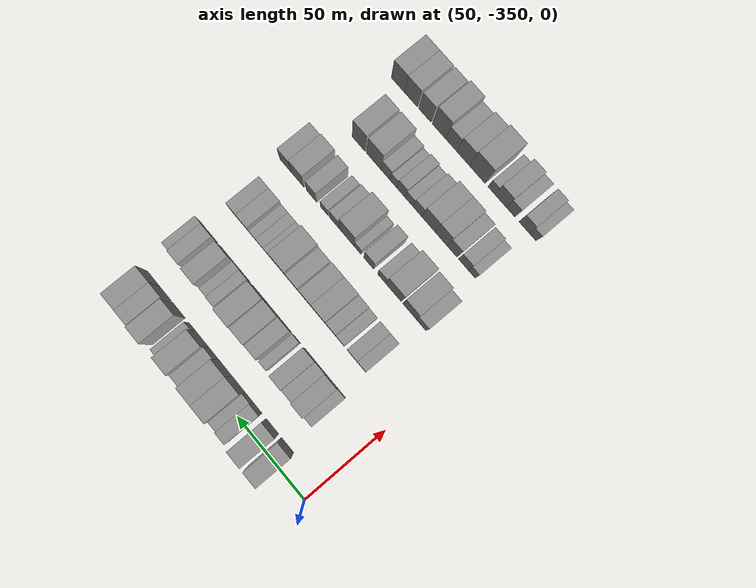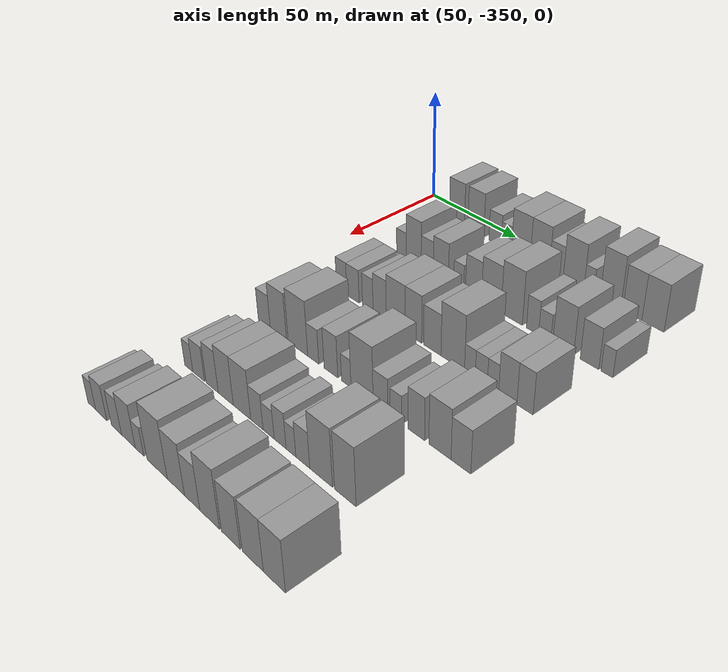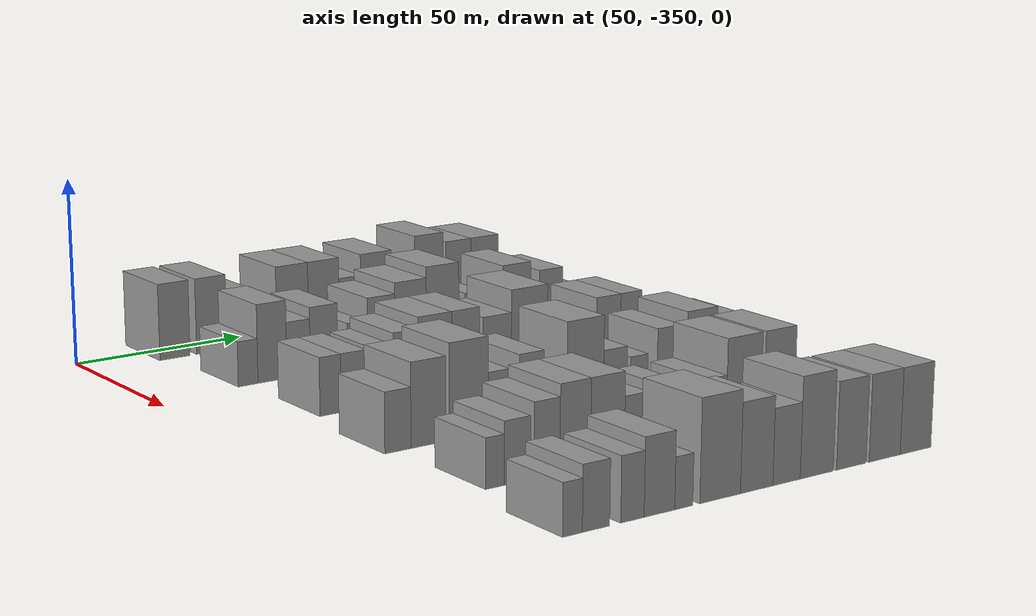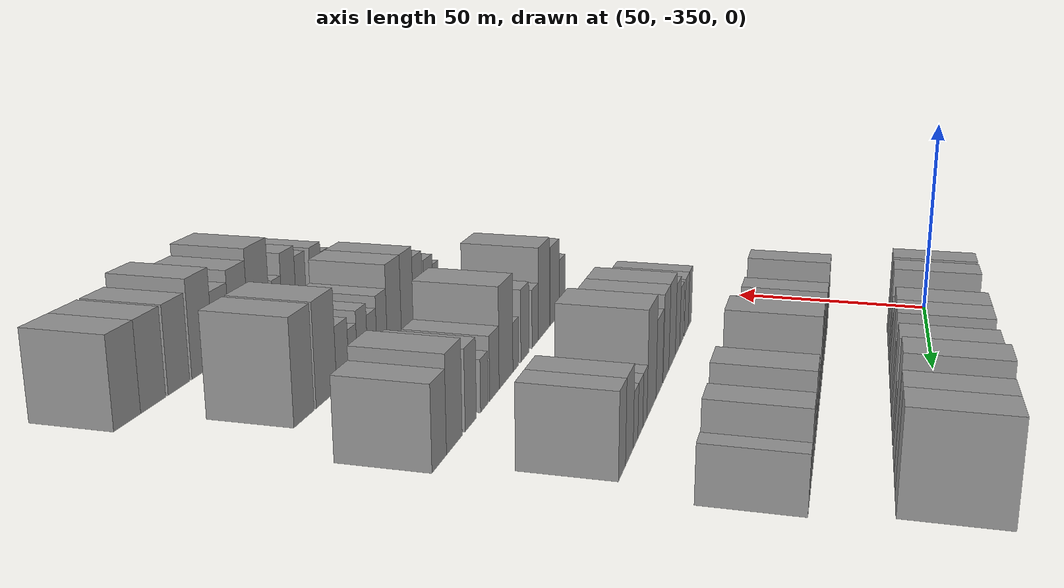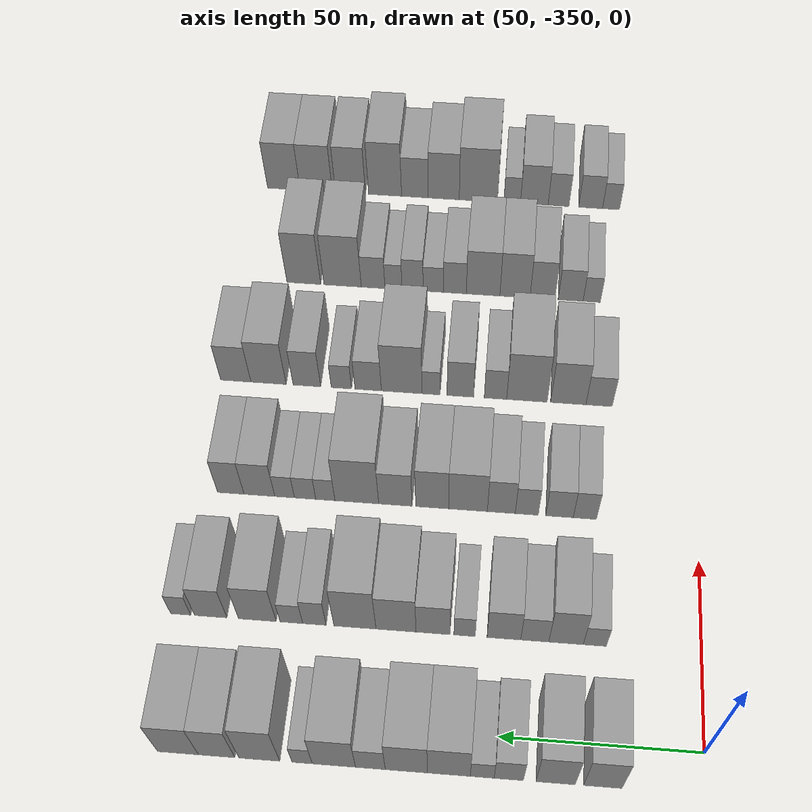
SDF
<sdf version="1.6">
 <world name="default">
  <model name="building_18">
   <static>1</static>
   <pose>50.0000 -325.6242 0 0.000000 0.000000 0.000000</pose>
   <link name="link">
    <pose>0 0 10.50 0 0 0</pose>
    <collision name="collision"><geometry><box><size>20.0000 9.1735 21.0000</size></box></geometry></collision>
    <visual name="visual">
     <cast_shadows>0</cast_shadows>
     <geometry><box><size>20.0000 9.1735 21.0000</size></box></geometry>
     <material>
      <script>
       <uri>model://grey_wall/materials/scripts</uri>
       <uri>model://grey_wall/materials/textures</uri>
       <name>vrc/grey_wall</name>
      </script>
     </material>
    </visual>
   </link>
  </model>
  <model name="building_19">
   <static>1</static>
   <pose>50.0000 -314.3347 0 0.000000 0.000000 0.000000</pose>
   <link name="link">
    <pose>0 0 10.50 0 0 0</pose>
    <collision name="collision"><geometry><box><size>20.0000 9.4055 21.0000</size></box></geometry></collision>
    <visual name="visual">
     <cast_shadows>0</cast_shadows>
     <geometry><box><size>20.0000 9.4055 21.0000</size></box></geometry>
     <material>
      <script>
       <uri>model://grey_wall/materials/scripts</uri>
       <uri>model://grey_wall/materials/textures</uri>
       <name>vrc/grey_wall</name>
      </script>
     </material>
    </visual>
   </link>
  </model>
  <model name="building_20">
   <static>1</static>
   <pose>50.0000 -303.0996 0 0.000000 0.000000 0.000000</pose>
   <link name="link">
    <pose>0 0 7.50 0 0 0</pose>
    <collision name="collision"><geometry><box><size>20.0000 7.0647 15.0000</size></box></geometry></collision>
    <visual name="visual">
     <cast_shadows>0</cast_shadows>
     <geometry><box><size>20.0000 7.0647 15.0000</size></box></geometry>
     <material>
      <script>
       <uri>model://grey_wall/materials/scripts</uri>
       <uri>model://grey_wall/materials/textures</uri>
       <name>vrc/grey_wall</name>
      </script>
     </material>
    </visual>
   </link>
  </model>
  <model name="building_21">
   <static>1</static>
   <pose>50.0000 -296.7143 0 0.000000 0.000000 0.000000</pose>
   <link name="link">
    <pose>0 0 6.00 0 0 0</pose>
    <collision name="collision"><geometry><box><size>20.0000 5.7060 12.0000</size></box></geometry></collision>
    <visual name="visual">
     <cast_shadows>0</cast_shadows>
     <geometry><box><size>20.0000 5.7060 12.0000</size></box></geometry>
     <material>
      <script>
       <uri>model://grey_wall/materials/scripts</uri>
       <uri>model://grey_wall/materials/textures</uri>
       <name>vrc/grey_wall</name>
      </script>
     </material>
    </visual>
   </link>
  </model>
  <model name="building_22">
   <static>1</static>
   <pose>50.0000 -288.7204 0 0.000000 0.000000 0.000000</pose>
   <link name="link">
    <pose>0 0 10.50 0 0 0</pose>
    <collision name="collision"><geometry><box><size>20.0000 10.2817 21.0000</size></box></geometry></collision>
    <visual name="visual">
     <cast_shadows>0</cast_shadows>
     <geometry><box><size>20.0000 10.2817 21.0000</size></box></geometry>
     <material>
      <script>
       <uri>model://grey_wall/materials/scripts</uri>
       <uri>model://grey_wall/materials/textures</uri>
       <name>vrc/grey_wall</name>
      </script>
     </material>
    </visual>
   </link>
  </model>
  <model name="building_23">
   <static>1</static>
   <pose>50.0000 -278.4777 0 0.000000 0.000000 0.000000</pose>
   <link name="link">
    <pose>0 0 10.50 0 0 0</pose>
    <collision name="collision"><geometry><box><size>20.0000 10.2036 21.0000</size></box></geometry></collision>
    <visual name="visual">
     <cast_shadows>0</cast_shadows>
     <geometry><box><size>20.0000 10.2036 21.0000</size></box></geometry>
     <material>
      <script>
       <uri>model://grey_wall/materials/scripts</uri>
       <uri>model://grey_wall/materials/textures</uri>
       <name>vrc/grey_wall</name>
      </script>
     </material>
    </visual>
   </link>
  </model>
  <model name="building_24">
   <static>1</static>
   <pose>50.0000 -269.7830 0 0.000000 0.000000 0.000000</pose>
   <link name="link">
    <pose>0 0 7.50 0 0 0</pose>
    <collision name="collision"><geometry><box><size>20.0000 7.1858 15.0000</size></box></geometry></collision>
    <visual name="visual">
     <cast_shadows>0</cast_shadows>
     <geometry><box><size>20.0000 7.1858 15.0000</size></box></geometry>
     <material>
      <script>
       <uri>model://grey_wall/materials/scripts</uri>
       <uri>model://grey_wall/materials/textures</uri>
       <name>vrc/grey_wall</name>
      </script>
     </material>
    </visual>
   </link>
  </model>
  <model name="building_25">
   <static>1</static>
   <pose>50.0000 -260.9441 0 0.000000 0.000000 0.000000</pose>
   <link name="link">
    <pose>0 0 10.50 0 0 0</pose>
    <collision name="collision"><geometry><box><size>20.0000 10.4920 21.0000</size></box></geometry></collision>
    <visual name="visual">
     <cast_shadows>0</cast_shadows>
     <geometry><box><size>20.0000 10.4920 21.0000</size></box></geometry>
     <material>
      <script>
       <uri>model://grey_wall/materials/scripts</uri>
       <uri>model://grey_wall/materials/textures</uri>
       <name>vrc/grey_wall</name>
      </script>
     </material>
    </visual>
   </link>
  </model>
  <model name="building_26">
   <static>1</static>
   <pose>50.0000 -253.2410 0 0.000000 0.000000 0.000000</pose>
   <link name="link">
    <pose>0 0 6.00 0 0 0</pose>
    <collision name="collision"><geometry><box><size>20.0000 4.9143 12.0000</size></box></geometry></collision>
    <visual name="visual">
     <cast_shadows>0</cast_shadows>
     <geometry><box><size>20.0000 4.9143 12.0000</size></box></geometry>
     <material>
      <script>
       <uri>model://grey_wall/materials/scripts</uri>
       <uri>model://grey_wall/materials/textures</uri>
       <name>vrc/grey_wall</name>
      </script>
     </material>
    </visual>
   </link>
  </model>
  <model name="building_27">
   <static>1</static>
   <pose>50.0000 -242.8196 0 0.000000 0.000000 0.000000</pose>
   <link name="link">
    <pose>0 0 12.00 0 0 0</pose>
    <collision name="collision"><geometry><box><size>20.0000 9.9284 24.0000</size></box></geometry></collision>
    <visual name="visual">
     <cast_shadows>0</cast_shadows>
     <geometry><box><size>20.0000 9.9284 24.0000</size></box></geometry>
     <material>
      <script>
       <uri>model://grey_wall/materials/scripts</uri>
       <uri>model://grey_wall/materials/textures</uri>
       <name>vrc/grey_wall</name>
      </script>
     </material>
    </visual>
   </link>
  </model>
  <model name="building_28">
   <static>1</static>
   <pose>50.0000 -232.4057 0 0.000000 0.000000 0.000000</pose>
   <link name="link">
    <pose>0 0 10.50 0 0 0</pose>
    <collision name="collision"><geometry><box><size>20.0000 8.8994 21.0000</size></box></geometry></collision>
    <visual name="visual">
     <cast_shadows>0</cast_shadows>
     <geometry><box><size>20.0000 8.8994 21.0000</size></box></geometry>
     <material>
      <script>
       <uri>model://grey_wall/materials/scripts</uri>
       <uri>model://grey_wall/materials/textures</uri>
       <name>vrc/grey_wall</name>
      </script>
     </material>
    </visual>
   </link>
  </model>
  <model name="building_29">
   <static>1</static>
   <pose>50.0000 -222.9685 0 0.000000 0.000000 0.000000</pose>
   <link name="link">
    <pose>0 0 10.50 0 0 0</pose>
    <collision name="collision"><geometry><box><size>20.0000 9.9748 21.0000</size></box></geometry></collision>
    <visual name="visual">
     <cast_shadows>0</cast_shadows>
     <geometry><box><size>20.0000 9.9748 21.0000</size></box></geometry>
     <material>
      <script>
       <uri>model://grey_wall/materials/scripts</uri>
       <uri>model://grey_wall/materials/textures</uri>
       <name>vrc/grey_wall</name>
      </script>
     </material>
    </visual>
   </link>
  </model>
  <model name="building_141">
   <static>1</static>
   <pose>85.0000 -323.1185 0 0.000000 0.000000 0.000000</pose>
   <link name="link">
    <pose>0 0 6.00 0 0 0</pose>
    <collision name="collision"><geometry><box><size>20.0000 5.8265 12.0000</size></box></geometry></collision>
    <visual name="visual">
     <cast_shadows>0</cast_shadows>
     <geometry><box><size>20.0000 5.8265 12.0000</size></box></geometry>
     <material>
      <script>
       <uri>model://grey_wall/materials/scripts</uri>
       <uri>model://grey_wall/materials/textures</uri>
       <name>vrc/grey_wall</name>
      </script>
     </material>
    </visual>
   </link>
  </model>
  <model name="building_142">
   <static>1</static>
   <pose>85.0000 -315.8381 0 0.000000 0.000000 0.000000</pose>
   <link name="link">
    <pose>0 0 10.50 0 0 0</pose>
    <collision name="collision"><geometry><box><size>20.0000 8.7344 21.0000</size></box></geometry></collision>
    <visual name="visual">
     <cast_shadows>0</cast_shadows>
     <geometry><box><size>20.0000 8.7344 21.0000</size></box></geometry>
     <material>
      <script>
       <uri>model://grey_wall/materials/scripts</uri>
       <uri>model://grey_wall/materials/textures</uri>
       <name>vrc/grey_wall</name>
      </script>
     </material>
    </visual>
   </link>
  </model>
  <model name="building_143">
   <static>1</static>
   <pose>85.0000 -307.9108 0 0.000000 0.000000 0.000000</pose>
   <link name="link">
    <pose>0 0 7.50 0 0 0</pose>
    <collision name="collision"><geometry><box><size>20.0000 7.1203 15.0000</size></box></geometry></collision>
    <visual name="visual">
     <cast_shadows>0</cast_shadows>
     <geometry><box><size>20.0000 7.1203 15.0000</size></box></geometry>
     <material>
      <script>
       <uri>model://grey_wall/materials/scripts</uri>
       <uri>model://grey_wall/materials/textures</uri>
       <name>vrc/grey_wall</name>
      </script>
     </material>
    </visual>
   </link>
  </model>
  <model name="building_144">
   <static>1</static>
   <pose>85.0000 -300.0840 0 0.000000 0.000000 0.000000</pose>
   <link name="link">
    <pose>0 0 9.00 0 0 0</pose>
    <collision name="collision"><geometry><box><size>20.0000 8.5332 18.0000</size></box></geometry></collision>
    <visual name="visual">
     <cast_shadows>0</cast_shadows>
     <geometry><box><size>20.0000 8.5332 18.0000</size></box></geometry>
     <material>
      <script>
       <uri>model://grey_wall/materials/scripts</uri>
       <uri>model://grey_wall/materials/textures</uri>
       <name>vrc/grey_wall</name>
      </script>
     </material>
    </visual>
   </link>
  </model>
  <model name="building_145">
   <static>1</static>
   <pose>85.0000 -290.1033 0 0.000000 0.000000 0.000000</pose>
   <link name="link">
    <pose>0 0 6.00 0 0 0</pose>
    <collision name="collision"><geometry><box><size>20.0000 5.4283 12.0000</size></box></geometry></collision>
    <visual name="visual">
     <cast_shadows>0</cast_shadows>
     <geometry><box><size>20.0000 5.4283 12.0000</size></box></geometry>
     <material>
      <script>
       <uri>model://grey_wall/materials/scripts</uri>
       <uri>model://grey_wall/materials/textures</uri>
       <name>vrc/grey_wall</name>
      </script>
     </material>
    </visual>
   </link>
  </model>
  <model name="building_146">
   <static>1</static>
   <pose>85.0000 -282.0687 0 0.000000 0.000000 0.000000</pose>
   <link name="link">
    <pose>0 0 9.00 0 0 0</pose>
    <collision name="collision"><geometry><box><size>20.0000 8.6408 18.0000</size></box></geometry></collision>
    <visual name="visual">
     <cast_shadows>0</cast_shadows>
     <geometry><box><size>20.0000 8.6408 18.0000</size></box></geometry>
     <material>
      <script>
       <uri>model://grey_wall/materials/scripts</uri>
       <uri>model://grey_wall/materials/textures</uri>
       <name>vrc/grey_wall</name>
      </script>
     </material>
    </visual>
   </link>
  </model>
  <model name="building_147">
   <static>1</static>
   <pose>85.0000 -272.6235 0 0.000000 0.000000 0.000000</pose>
   <link name="link">
    <pose>0 0 10.50 0 0 0</pose>
    <collision name="collision"><geometry><box><size>20.0000 10.2497 21.0000</size></box></geometry></collision>
    <visual name="visual">
     <cast_shadows>0</cast_shadows>
     <geometry><box><size>20.0000 10.2497 21.0000</size></box></geometry>
     <material>
      <script>
       <uri>model://grey_wall/materials/scripts</uri>
       <uri>model://grey_wall/materials/textures</uri>
       <name>vrc/grey_wall</name>
      </script>
     </material>
    </visual>
   </link>
  </model>
  <model name="building_148">
   <static>1</static>
   <pose>85.0000 -262.1212 0 0.000000 0.000000 0.000000</pose>
   <link name="link">
    <pose>0 0 12.00 0 0 0</pose>
    <collision name="collision"><geometry><box><size>20.0000 10.7550 24.0000</size></box></geometry></collision>
    <visual name="visual">
     <cast_shadows>0</cast_shadows>
     <geometry><box><size>20.0000 10.7550 24.0000</size></box></geometry>
     <material>
      <script>
       <uri>model://grey_wall/materials/scripts</uri>
       <uri>model://grey_wall/materials/textures</uri>
       <name>vrc/grey_wall</name>
      </script>
     </material>
    </visual>
   </link>
  </model>
  <model name="building_149">
   <static>1</static>
   <pose>85.0000 -251.7388 0 0.000000 0.000000 0.000000</pose>
   <link name="link">
    <pose>0 0 7.50 0 0 0</pose>
    <collision name="collision"><geometry><box><size>20.0000 6.0099 15.0000</size></box></geometry></collision>
    <visual name="visual">
     <cast_shadows>0</cast_shadows>
     <geometry><box><size>20.0000 6.0099 15.0000</size></box></geometry>
     <material>
      <script>
       <uri>model://grey_wall/materials/scripts</uri>
       <uri>model://grey_wall/materials/textures</uri>
       <name>vrc/grey_wall</name>
      </script>
     </material>
    </visual>
   </link>
  </model>
  <model name="building_150">
   <static>1</static>
   <pose>85.0000 -245.8248 0 0.000000 0.000000 0.000000</pose>
   <link name="link">
    <pose>0 0 6.00 0 0 0</pose>
    <collision name="collision"><geometry><box><size>20.0000 5.8181 12.0000</size></box></geometry></collision>
    <visual name="visual">
     <cast_shadows>0</cast_shadows>
     <geometry><box><size>20.0000 5.8181 12.0000</size></box></geometry>
     <material>
      <script>
       <uri>model://grey_wall/materials/scripts</uri>
       <uri>model://grey_wall/materials/textures</uri>
       <name>vrc/grey_wall</name>
      </script>
     </material>
    </visual>
   </link>
  </model>
  <model name="building_151">
   <static>1</static>
   <pose>85.0000 -237.0635 0 0.000000 0.000000 0.000000</pose>
   <link name="link">
    <pose>0 0 10.50 0 0 0</pose>
    <collision name="collision"><geometry><box><size>20.0000 9.7045 21.0000</size></box></geometry></collision>
    <visual name="visual">
     <cast_shadows>0</cast_shadows>
     <geometry><box><size>20.0000 9.7045 21.0000</size></box></geometry>
     <material>
      <script>
       <uri>model://grey_wall/materials/scripts</uri>
       <uri>model://grey_wall/materials/textures</uri>
       <name>vrc/grey_wall</name>
      </script>
     </material>
    </visual>
   </link>
  </model>
  <model name="building_152">
   <static>1</static>
   <pose>85.0000 -225.0335 0 0.000000 0.000000 0.000000</pose>
   <link name="link">
    <pose>0 0 9.00 0 0 0</pose>
    <collision name="collision"><geometry><box><size>20.0000 8.3554 18.0000</size></box></geometry></collision>
    <visual name="visual">
     <cast_shadows>0</cast_shadows>
     <geometry><box><size>20.0000 8.3554 18.0000</size></box></geometry>
     <material>
      <script>
       <uri>model://grey_wall/materials/scripts</uri>
       <uri>model://grey_wall/materials/textures</uri>
       <name>vrc/grey_wall</name>
      </script>
     </material>
    </visual>
   </link>
  </model>
  <model name="building_153">
   <static>1</static>
   <pose>85.0000 -217.2545 0 0.000000 0.000000 0.000000</pose>
   <link name="link">
    <pose>0 0 6.00 0 0 0</pose>
    <collision name="collision"><geometry><box><size>20.0000 5.2027 12.0000</size></box></geometry></collision>
    <visual name="visual">
     <cast_shadows>0</cast_shadows>
     <geometry><box><size>20.0000 5.2027 12.0000</size></box></geometry>
     <material>
      <script>
       <uri>model://grey_wall/materials/scripts</uri>
       <uri>model://grey_wall/materials/textures</uri>
       <name>vrc/grey_wall</name>
      </script>
     </material>
    </visual>
   </link>
  </model>
  <model name="building_270">
   <static>1</static>
   <pose>120.0000 -319.8528 0 0.000000 0.000000 0.000000</pose>
   <link name="link">
    <pose>0 0 7.50 0 0 0</pose>
    <collision name="collision"><geometry><box><size>20.0000 6.1813 15.0000</size></box></geometry></collision>
    <visual name="visual">
     <cast_shadows>0</cast_shadows>
     <geometry><box><size>20.0000 6.1813 15.0000</size></box></geometry>
     <material>
      <script>
       <uri>model://grey_wall/materials/scripts</uri>
       <uri>model://grey_wall/materials/textures</uri>
       <name>vrc/grey_wall</name>
      </script>
     </material>
    </visual>
   </link>
  </model>
  <model name="building_271">
   <static>1</static>
   <pose>120.0000 -313.0981 0 0.000000 0.000000 0.000000</pose>
   <link name="link">
    <pose>0 0 7.50 0 0 0</pose>
    <collision name="collision"><geometry><box><size>20.0000 7.3280 15.0000</size></box></geometry></collision>
    <visual name="visual">
     <cast_shadows>0</cast_shadows>
     <geometry><box><size>20.0000 7.3280 15.0000</size></box></geometry>
     <material>
      <script>
       <uri>model://grey_wall/materials/scripts</uri>
       <uri>model://grey_wall/materials/textures</uri>
       <name>vrc/grey_wall</name>
      </script>
     </material>
    </visual>
   </link>
  </model>
  <model name="building_272">
   <static>1</static>
   <pose>120.0000 -304.3624 0 0.000000 0.000000 0.000000</pose>
   <link name="link">
    <pose>0 0 7.50 0 0 0</pose>
    <collision name="collision"><geometry><box><size>20.0000 6.1433 15.0000</size></box></geometry></collision>
    <visual name="visual">
     <cast_shadows>0</cast_shadows>
     <geometry><box><size>20.0000 6.1433 15.0000</size></box></geometry>
     <material>
      <script>
       <uri>model://grey_wall/materials/scripts</uri>
       <uri>model://grey_wall/materials/textures</uri>
       <name>vrc/grey_wall</name>
      </script>
     </material>
    </visual>
   </link>
  </model>
  <model name="building_273">
   <static>1</static>
   <pose>120.0000 -297.5568 0 0.000000 0.000000 0.000000</pose>
   <link name="link">
    <pose>0 0 9.00 0 0 0</pose>
    <collision name="collision"><geometry><box><size>20.0000 7.4681 18.0000</size></box></geometry></collision>
    <visual name="visual">
     <cast_shadows>0</cast_shadows>
     <geometry><box><size>20.0000 7.4681 18.0000</size></box></geometry>
     <material>
      <script>
       <uri>model://grey_wall/materials/scripts</uri>
       <uri>model://grey_wall/materials/textures</uri>
       <name>vrc/grey_wall</name>
      </script>
     </material>
    </visual>
   </link>
  </model>
  <model name="building_274">
   <static>1</static>
   <pose>120.0000 -288.6301 0 0.000000 0.000000 0.000000</pose>
   <link name="link">
    <pose>0 0 10.50 0 0 0</pose>
    <collision name="collision"><geometry><box><size>20.0000 10.3853 21.0000</size></box></geometry></collision>
    <visual name="visual">
     <cast_shadows>0</cast_shadows>
     <geometry><box><size>20.0000 10.3853 21.0000</size></box></geometry>
     <material>
      <script>
       <uri>model://grey_wall/materials/scripts</uri>
       <uri>model://grey_wall/materials/textures</uri>
       <name>vrc/grey_wall</name>
      </script>
     </material>
    </visual>
   </link>
  </model>
  <model name="building_275">
   <static>1</static>
   <pose>120.0000 -279.0228 0 0.000000 0.000000 0.000000</pose>
   <link name="link">
    <pose>0 0 10.50 0 0 0</pose>
    <collision name="collision"><geometry><box><size>20.0000 8.8292 21.0000</size></box></geometry></collision>
    <visual name="visual">
     <cast_shadows>0</cast_shadows>
     <geometry><box><size>20.0000 8.8292 21.0000</size></box></geometry>
     <material>
      <script>
       <uri>model://grey_wall/materials/scripts</uri>
       <uri>model://grey_wall/materials/textures</uri>
       <name>vrc/grey_wall</name>
      </script>
     </material>
    </visual>
   </link>
  </model>
  <model name="building_276">
   <static>1</static>
   <pose>120.0000 -269.1109 0 0.000000 0.000000 0.000000</pose>
   <link name="link">
    <pose>0 0 9.00 0 0 0</pose>
    <collision name="collision"><geometry><box><size>20.0000 8.9947 18.0000</size></box></geometry></collision>
    <visual name="visual">
     <cast_shadows>0</cast_shadows>
     <geometry><box><size>20.0000 8.9947 18.0000</size></box></geometry>
     <material>
      <script>
       <uri>model://grey_wall/materials/scripts</uri>
       <uri>model://grey_wall/materials/textures</uri>
       <name>vrc/grey_wall</name>
      </script>
     </material>
    </visual>
   </link>
  </model>
  <model name="building_277">
   <static>1</static>
   <pose>120.0000 -258.7090 0 0.000000 0.000000 0.000000</pose>
   <link name="link">
    <pose>0 0 12.00 0 0 0</pose>
    <collision name="collision"><geometry><box><size>20.0000 11.8091 24.0000</size></box></geometry></collision>
    <visual name="visual">
     <cast_shadows>0</cast_shadows>
     <geometry><box><size>20.0000 11.8091 24.0000</size></box></geometry>
     <material>
      <script>
       <uri>model://grey_wall/materials/scripts</uri>
       <uri>model://grey_wall/materials/textures</uri>
       <name>vrc/grey_wall</name>
      </script>
     </material>
    </visual>
   </link>
  </model>
  <model name="building_278">
   <static>1</static>
   <pose>120.0000 -250.2160 0 0.000000 0.000000 0.000000</pose>
   <link name="link">
    <pose>0 0 6.00 0 0 0</pose>
    <collision name="collision"><geometry><box><size>20.0000 5.1768 12.0000</size></box></geometry></collision>
    <visual name="visual">
     <cast_shadows>0</cast_shadows>
     <geometry><box><size>20.0000 5.1768 12.0000</size></box></geometry>
     <material>
      <script>
       <uri>model://grey_wall/materials/scripts</uri>
       <uri>model://grey_wall/materials/textures</uri>
       <name>vrc/grey_wall</name>
      </script>
     </material>
    </visual>
   </link>
  </model>
  <model name="building_279">
   <static>1</static>
   <pose>120.0000 -244.7403 0 0.000000 0.000000 0.000000</pose>
   <link name="link">
    <pose>0 0 6.00 0 0 0</pose>
    <collision name="collision"><geometry><box><size>20.0000 5.7747 12.0000</size></box></geometry></collision>
    <visual name="visual">
     <cast_shadows>0</cast_shadows>
     <geometry><box><size>20.0000 5.7747 12.0000</size></box></geometry>
     <material>
      <script>
       <uri>model://grey_wall/materials/scripts</uri>
       <uri>model://grey_wall/materials/textures</uri>
       <name>vrc/grey_wall</name>
      </script>
     </material>
    </visual>
   </link>
  </model>
  <model name="building_280">
   <static>1</static>
   <pose>120.0000 -239.1836 0 0.000000 0.000000 0.000000</pose>
   <link name="link">
    <pose>0 0 6.00 0 0 0</pose>
    <collision name="collision"><geometry><box><size>20.0000 5.3386 12.0000</size></box></geometry></collision>
    <visual name="visual">
     <cast_shadows>0</cast_shadows>
     <geometry><box><size>20.0000 5.3386 12.0000</size></box></geometry>
     <material>
      <script>
       <uri>model://grey_wall/materials/scripts</uri>
       <uri>model://grey_wall/materials/textures</uri>
       <name>vrc/grey_wall</name>
      </script>
     </material>
    </visual>
   </link>
  </model>
  <model name="building_281">
   <static>1</static>
   <pose>120.0000 -232.3339 0 0.000000 0.000000 0.000000</pose>
   <link name="link">
    <pose>0 0 9.00 0 0 0</pose>
    <collision name="collision"><geometry><box><size>20.0000 8.3608 18.0000</size></box></geometry></collision>
    <visual name="visual">
     <cast_shadows>0</cast_shadows>
     <geometry><box><size>20.0000 8.3608 18.0000</size></box></geometry>
     <material>
      <script>
       <uri>model://grey_wall/materials/scripts</uri>
       <uri>model://grey_wall/materials/textures</uri>
       <name>vrc/grey_wall</name>
      </script>
     </material>
    </visual>
   </link>
  </model>
  <model name="building_282">
   <static>1</static>
   <pose>120.0000 -224.5510 0 0.000000 0.000000 0.000000</pose>
   <link name="link">
    <pose>0 0 9.00 0 0 0</pose>
    <collision name="collision"><geometry><box><size>20.0000 7.2051 18.0000</size></box></geometry></collision>
    <visual name="visual">
     <cast_shadows>0</cast_shadows>
     <geometry><box><size>20.0000 7.2051 18.0000</size></box></geometry>
     <material>
      <script>
       <uri>model://grey_wall/materials/scripts</uri>
       <uri>model://grey_wall/materials/textures</uri>
       <name>vrc/grey_wall</name>
      </script>
     </material>
    </visual>
   </link>
  </model>
  <model name="building_391">
   <static>1</static>
   <pose>155.0000 -323.1004 0 0.000000 0.000000 0.000000</pose>
   <link name="link">
    <pose>0 0 7.50 0 0 0</pose>
    <collision name="collision"><geometry><box><size>20.0000 7.3639 15.0000</size></box></geometry></collision>
    <visual name="visual">
     <cast_shadows>0</cast_shadows>
     <geometry><box><size>20.0000 7.3639 15.0000</size></box></geometry>
     <material>
      <script>
       <uri>model://grey_wall/materials/scripts</uri>
       <uri>model://grey_wall/materials/textures</uri>
       <name>vrc/grey_wall</name>
      </script>
     </material>
    </visual>
   </link>
  </model>
  <model name="building_392">
   <static>1</static>
   <pose>155.0000 -314.4829 0 0.000000 0.000000 0.000000</pose>
   <link name="link">
    <pose>0 0 10.50 0 0 0</pose>
    <collision name="collision"><geometry><box><size>20.0000 9.8713 21.0000</size></box></geometry></collision>
    <visual name="visual">
     <cast_shadows>0</cast_shadows>
     <geometry><box><size>20.0000 9.8713 21.0000</size></box></geometry>
     <material>
      <script>
       <uri>model://grey_wall/materials/scripts</uri>
       <uri>model://grey_wall/materials/textures</uri>
       <name>vrc/grey_wall</name>
      </script>
     </material>
    </visual>
   </link>
  </model>
  <model name="building_393">
   <static>1</static>
   <pose>155.0000 -302.8587 0 0.000000 0.000000 0.000000</pose>
   <link name="link">
    <pose>0 0 12.00 0 0 0</pose>
    <collision name="collision"><geometry><box><size>20.0000 11.3772 24.0000</size></box></geometry></collision>
    <visual name="visual">
     <cast_shadows>0</cast_shadows>
     <geometry><box><size>20.0000 11.3772 24.0000</size></box></geometry>
     <material>
      <script>
       <uri>model://grey_wall/materials/scripts</uri>
       <uri>model://grey_wall/materials/textures</uri>
       <name>vrc/grey_wall</name>
      </script>
     </material>
    </visual>
   </link>
  </model>
  <model name="building_394">
   <static>1</static>
   <pose>155.0000 -294.0227 0 0.000000 0.000000 0.000000</pose>
   <link name="link">
    <pose>0 0 7.50 0 0 0</pose>
    <collision name="collision"><geometry><box><size>20.0000 6.2948 15.0000</size></box></geometry></collision>
    <visual name="visual">
     <cast_shadows>0</cast_shadows>
     <geometry><box><size>20.0000 6.2948 15.0000</size></box></geometry>
     <material>
      <script>
       <uri>model://grey_wall/materials/scripts</uri>
       <uri>model://grey_wall/materials/textures</uri>
       <name>vrc/grey_wall</name>
      </script>
     </material>
    </visual>
   </link>
  </model>
  <model name="building_395">
   <static>1</static>
   <pose>155.0000 -284.1289 0 0.000000 0.000000 0.000000</pose>
   <link name="link">
    <pose>0 0 9.00 0 0 0</pose>
    <collision name="collision"><geometry><box><size>20.0000 7.4928 18.0000</size></box></geometry></collision>
    <visual name="visual">
     <cast_shadows>0</cast_shadows>
     <geometry><box><size>20.0000 7.4928 18.0000</size></box></geometry>
     <material>
      <script>
       <uri>model://grey_wall/materials/scripts</uri>
       <uri>model://grey_wall/materials/textures</uri>
       <name>vrc/grey_wall</name>
      </script>
     </material>
    </visual>
   </link>
  </model>
  <model name="building_396">
   <static>1</static>
   <pose>155.0000 -275.8568 0 0.000000 0.000000 0.000000</pose>
   <link name="link">
    <pose>0 0 6.00 0 0 0</pose>
    <collision name="collision"><geometry><box><size>20.0000 5.0515 12.0000</size></box></geometry></collision>
    <visual name="visual">
     <cast_shadows>0</cast_shadows>
     <geometry><box><size>20.0000 5.0515 12.0000</size></box></geometry>
     <material>
      <script>
       <uri>model://grey_wall/materials/scripts</uri>
       <uri>model://grey_wall/materials/textures</uri>
       <name>vrc/grey_wall</name>
      </script>
     </material>
    </visual>
   </link>
  </model>
  <model name="building_397">
   <static>1</static>
   <pose>155.0000 -267.5614 0 0.000000 0.000000 0.000000</pose>
   <link name="link">
    <pose>0 0 12.00 0 0 0</pose>
    <collision name="collision"><geometry><box><size>20.0000 11.5393 24.0000</size></box></geometry></collision>
    <visual name="visual">
     <cast_shadows>0</cast_shadows>
     <geometry><box><size>20.0000 11.5393 24.0000</size></box></geometry>
     <material>
      <script>
       <uri>model://grey_wall/materials/scripts</uri>
       <uri>model://grey_wall/materials/textures</uri>
       <name>vrc/grey_wall</name>
      </script>
     </material>
    </visual>
   </link>
  </model>
  <model name="building_398">
   <static>1</static>
   <pose>155.0000 -258.0542 0 0.000000 0.000000 0.000000</pose>
   <link name="link">
    <pose>0 0 7.50 0 0 0</pose>
    <collision name="collision"><geometry><box><size>20.0000 7.4750 15.0000</size></box></geometry></collision>
    <visual name="visual">
     <cast_shadows>0</cast_shadows>
     <geometry><box><size>20.0000 7.4750 15.0000</size></box></geometry>
     <material>
      <script>
       <uri>model://grey_wall/materials/scripts</uri>
       <uri>model://grey_wall/materials/textures</uri>
       <name>vrc/grey_wall</name>
      </script>
     </material>
    </visual>
   </link>
  </model>
  <model name="building_399">
   <static>1</static>
   <pose>155.0000 -250.4406 0 0.000000 0.000000 0.000000</pose>
   <link name="link">
    <pose>0 0 6.00 0 0 0</pose>
    <collision name="collision"><geometry><box><size>20.0000 5.7523 12.0000</size></box></geometry></collision>
    <visual name="visual">
     <cast_shadows>0</cast_shadows>
     <geometry><box><size>20.0000 5.7523 12.0000</size></box></geometry>
     <material>
      <script>
       <uri>model://grey_wall/materials/scripts</uri>
       <uri>model://grey_wall/materials/textures</uri>
       <name>vrc/grey_wall</name>
      </script>
     </material>
    </visual>
   </link>
  </model>
  <model name="building_400">
   <static>1</static>
   <pose>155.0000 -240.6426 0 0.000000 0.000000 0.000000</pose>
   <link name="link">
    <pose>0 0 9.00 0 0 0</pose>
    <collision name="collision"><geometry><box><size>20.0000 7.8437 18.0000</size></box></geometry></collision>
    <visual name="visual">
     <cast_shadows>0</cast_shadows>
     <geometry><box><size>20.0000 7.8437 18.0000</size></box></geometry>
     <material>
      <script>
       <uri>model://grey_wall/materials/scripts</uri>
       <uri>model://grey_wall/materials/textures</uri>
       <name>vrc/grey_wall</name>
      </script>
     </material>
    </visual>
   </link>
  </model>
  <model name="building_401">
   <static>1</static>
   <pose>155.0000 -229.6948 0 0.000000 0.000000 0.000000</pose>
   <link name="link">
    <pose>0 0 10.50 0 0 0</pose>
    <collision name="collision"><geometry><box><size>20.0000 10.0518 21.0000</size></box></geometry></collision>
    <visual name="visual">
     <cast_shadows>0</cast_shadows>
     <geometry><box><size>20.0000 10.0518 21.0000</size></box></geometry>
     <material>
      <script>
       <uri>model://grey_wall/materials/scripts</uri>
       <uri>model://grey_wall/materials/textures</uri>
       <name>vrc/grey_wall</name>
      </script>
     </material>
    </visual>
   </link>
  </model>
  <model name="building_402">
   <static>1</static>
   <pose>155.0000 -220.3279 0 0.000000 0.000000 0.000000</pose>
   <link name="link">
    <pose>0 0 9.00 0 0 0</pose>
    <collision name="collision"><geometry><box><size>20.0000 8.6821 18.0000</size></box></geometry></collision>
    <visual name="visual">
     <cast_shadows>0</cast_shadows>
     <geometry><box><size>20.0000 8.6821 18.0000</size></box></geometry>
     <material>
      <script>
       <uri>model://grey_wall/materials/scripts</uri>
       <uri>model://grey_wall/materials/textures</uri>
       <name>vrc/grey_wall</name>
      </script>
     </material>
    </visual>
   </link>
  </model>
  <model name="building_515">
   <static>1</static>
   <pose>190.0000 -320.4052 0 0.000000 0.000000 0.000000</pose>
   <link name="link">
    <pose>0 0 6.00 0 0 0</pose>
    <collision name="collision"><geometry><box><size>20.0000 5.0729 12.0000</size></box></geometry></collision>
    <visual name="visual">
     <cast_shadows>0</cast_shadows>
     <geometry><box><size>20.0000 5.0729 12.0000</size></box></geometry>
     <material>
      <script>
       <uri>model://grey_wall/materials/scripts</uri>
       <uri>model://grey_wall/materials/textures</uri>
       <name>vrc/grey_wall</name>
      </script>
     </material>
    </visual>
   </link>
  </model>
  <model name="building_516">
   <static>1</static>
   <pose>190.0000 -314.2128 0 0.000000 0.000000 0.000000</pose>
   <link name="link">
    <pose>0 0 7.50 0 0 0</pose>
    <collision name="collision"><geometry><box><size>20.0000 7.3118 15.0000</size></box></geometry></collision>
    <visual name="visual">
     <cast_shadows>0</cast_shadows>
     <geometry><box><size>20.0000 7.3118 15.0000</size></box></geometry>
     <material>
      <script>
       <uri>model://grey_wall/materials/scripts</uri>
       <uri>model://grey_wall/materials/textures</uri>
       <name>vrc/grey_wall</name>
      </script>
     </material>
    </visual>
   </link>
  </model>
  <model name="building_517">
   <static>1</static>
   <pose>190.0000 -305.9000 0 0.000000 0.000000 0.000000</pose>
   <link name="link">
    <pose>0 0 9.00 0 0 0</pose>
    <collision name="collision"><geometry><box><size>20.0000 7.3138 18.0000</size></box></geometry></collision>
    <visual name="visual">
     <cast_shadows>0</cast_shadows>
     <geometry><box><size>20.0000 7.3138 18.0000</size></box></geometry>
     <material>
      <script>
       <uri>model://grey_wall/materials/scripts</uri>
       <uri>model://grey_wall/materials/textures</uri>
       <name>vrc/grey_wall</name>
      </script>
     </material>
    </visual>
   </link>
  </model>
  <model name="building_518">
   <static>1</static>
   <pose>190.0000 -297.8016 0 0.000000 0.000000 0.000000</pose>
   <link name="link">
    <pose>0 0 10.50 0 0 0</pose>
    <collision name="collision"><geometry><box><size>20.0000 8.8830 21.0000</size></box></geometry></collision>
    <visual name="visual">
     <cast_shadows>0</cast_shadows>
     <geometry><box><size>20.0000 8.8830 21.0000</size></box></geometry>
     <material>
      <script>
       <uri>model://grey_wall/materials/scripts</uri>
       <uri>model://grey_wall/materials/textures</uri>
       <name>vrc/grey_wall</name>
      </script>
     </material>
    </visual>
   </link>
  </model>
  <model name="building_519">
   <static>1</static>
   <pose>190.0000 -288.4005 0 0.000000 0.000000 0.000000</pose>
   <link name="link">
    <pose>0 0 10.50 0 0 0</pose>
    <collision name="collision"><geometry><box><size>20.0000 9.9192 21.0000</size></box></geometry></collision>
    <visual name="visual">
     <cast_shadows>0</cast_shadows>
     <geometry><box><size>20.0000 9.9192 21.0000</size></box></geometry>
     <material>
      <script>
       <uri>model://grey_wall/materials/scripts</uri>
       <uri>model://grey_wall/materials/textures</uri>
       <name>vrc/grey_wall</name>
      </script>
     </material>
    </visual>
   </link>
  </model>
  <model name="building_520">
   <static>1</static>
   <pose>190.0000 -280.0370 0 0.000000 0.000000 0.000000</pose>
   <link name="link">
    <pose>0 0 7.50 0 0 0</pose>
    <collision name="collision"><geometry><box><size>20.0000 6.8077 15.0000</size></box></geometry></collision>
    <visual name="visual">
     <cast_shadows>0</cast_shadows>
     <geometry><box><size>20.0000 6.8077 15.0000</size></box></geometry>
     <material>
      <script>
       <uri>model://grey_wall/materials/scripts</uri>
       <uri>model://grey_wall/materials/textures</uri>
       <name>vrc/grey_wall</name>
      </script>
     </material>
    </visual>
   </link>
  </model>
  <model name="building_521">
   <static>1</static>
   <pose>190.0000 -273.6483 0 0.000000 0.000000 0.000000</pose>
   <link name="link">
    <pose>0 0 6.00 0 0 0</pose>
    <collision name="collision"><geometry><box><size>20.0000 5.9697 12.0000</size></box></geometry></collision>
    <visual name="visual">
     <cast_shadows>0</cast_shadows>
     <geometry><box><size>20.0000 5.9697 12.0000</size></box></geometry>
     <material>
      <script>
       <uri>model://grey_wall/materials/scripts</uri>
       <uri>model://grey_wall/materials/textures</uri>
       <name>vrc/grey_wall</name>
      </script>
     </material>
    </visual>
   </link>
  </model>
  <model name="building_522">
   <static>1</static>
   <pose>190.0000 -267.5186 0 0.000000 0.000000 0.000000</pose>
   <link name="link">
    <pose>0 0 7.50 0 0 0</pose>
    <collision name="collision"><geometry><box><size>20.0000 6.2898 15.0000</size></box></geometry></collision>
    <visual name="visual">
     <cast_shadows>0</cast_shadows>
     <geometry><box><size>20.0000 6.2898 15.0000</size></box></geometry>
     <material>
      <script>
       <uri>model://grey_wall/materials/scripts</uri>
       <uri>model://grey_wall/materials/textures</uri>
       <name>vrc/grey_wall</name>
      </script>
     </material>
    </visual>
   </link>
  </model>
  <model name="building_523">
   <static>1</static>
   <pose>190.0000 -261.8410 0 0.000000 0.000000 0.000000</pose>
   <link name="link">
    <pose>0 0 6.00 0 0 0</pose>
    <collision name="collision"><geometry><box><size>20.0000 5.0654 12.0000</size></box></geometry></collision>
    <visual name="visual">
     <cast_shadows>0</cast_shadows>
     <geometry><box><size>20.0000 5.0654 12.0000</size></box></geometry>
     <material>
      <script>
       <uri>model://grey_wall/materials/scripts</uri>
       <uri>model://grey_wall/materials/textures</uri>
       <name>vrc/grey_wall</name>
      </script>
     </material>
    </visual>
   </link>
  </model>
  <model name="building_524">
   <static>1</static>
   <pose>190.0000 -255.7845 0 0.000000 0.000000 0.000000</pose>
   <link name="link">
    <pose>0 0 7.50 0 0 0</pose>
    <collision name="collision"><geometry><box><size>20.0000 7.0475 15.0000</size></box></geometry></collision>
    <visual name="visual">
     <cast_shadows>0</cast_shadows>
     <geometry><box><size>20.0000 7.0475 15.0000</size></box></geometry>
     <material>
      <script>
       <uri>model://grey_wall/materials/scripts</uri>
       <uri>model://grey_wall/materials/textures</uri>
       <name>vrc/grey_wall</name>
      </script>
     </material>
    </visual>
   </link>
  </model>
  <model name="building_525">
   <static>1</static>
   <pose>190.0000 -246.7005 0 0.000000 0.000000 0.000000</pose>
   <link name="link">
    <pose>0 0 12.00 0 0 0</pose>
    <collision name="collision"><geometry><box><size>20.0000 11.1205 24.0000</size></box></geometry></collision>
    <visual name="visual">
     <cast_shadows>0</cast_shadows>
     <geometry><box><size>20.0000 11.1205 24.0000</size></box></geometry>
     <material>
      <script>
       <uri>model://grey_wall/materials/scripts</uri>
       <uri>model://grey_wall/materials/textures</uri>
       <name>vrc/grey_wall</name>
      </script>
     </material>
    </visual>
   </link>
  </model>
  <model name="building_526">
   <static>1</static>
   <pose>190.0000 -235.1070 0 0.000000 0.000000 0.000000</pose>
   <link name="link">
    <pose>0 0 12.00 0 0 0</pose>
    <collision name="collision"><geometry><box><size>20.0000 10.0665 24.0000</size></box></geometry></collision>
    <visual name="visual">
     <cast_shadows>0</cast_shadows>
     <geometry><box><size>20.0000 10.0665 24.0000</size></box></geometry>
     <material>
      <script>
       <uri>model://grey_wall/materials/scripts</uri>
       <uri>model://grey_wall/materials/textures</uri>
       <name>vrc/grey_wall</name>
      </script>
     </material>
    </visual>
   </link>
  </model>
  <model name="building_643">
   <static>1</static>
   <pose>225.0000 -325.7070 0 0.000000 0.000000 0.000000</pose>
   <link name="link">
    <pose>0 0 6.00 0 0 0</pose>
    <collision name="collision"><geometry><box><size>20.0000 5.2137 12.0000</size></box></geometry></collision>
    <visual name="visual">
     <cast_shadows>0</cast_shadows>
     <geometry><box><size>20.0000 5.2137 12.0000</size></box></geometry>
     <material>
      <script>
       <uri>model://grey_wall/materials/scripts</uri>
       <uri>model://grey_wall/materials/textures</uri>
       <name>vrc/grey_wall</name>
      </script>
     </material>
    </visual>
   </link>
  </model>
  <model name="building_644">
   <static>1</static>
   <pose>225.0000 -319.4386 0 0.000000 0.000000 0.000000</pose>
   <link name="link">
    <pose>0 0 7.50 0 0 0</pose>
    <collision name="collision"><geometry><box><size>20.0000 7.3230 15.0000</size></box></geometry></collision>
    <visual name="visual">
     <cast_shadows>0</cast_shadows>
     <geometry><box><size>20.0000 7.3230 15.0000</size></box></geometry>
     <material>
      <script>
       <uri>model://grey_wall/materials/scripts</uri>
       <uri>model://grey_wall/materials/textures</uri>
       <name>vrc/grey_wall</name>
      </script>
     </material>
    </visual>
   </link>
  </model>
  <model name="building_645">
   <static>1</static>
   <pose>225.0000 -309.5593 0 0.000000 0.000000 0.000000</pose>
   <link name="link">
    <pose>0 0 7.50 0 0 0</pose>
    <collision name="collision"><geometry><box><size>20.0000 6.4356 15.0000</size></box></geometry></collision>
    <visual name="visual">
     <cast_shadows>0</cast_shadows>
     <geometry><box><size>20.0000 6.4356 15.0000</size></box></geometry>
     <material>
      <script>
       <uri>model://grey_wall/materials/scripts</uri>
       <uri>model://grey_wall/materials/textures</uri>
       <name>vrc/grey_wall</name>
      </script>
     </material>
    </visual>
   </link>
  </model>
  <model name="building_646">
   <static>1</static>
   <pose>225.0000 -302.0747 0 0.000000 0.000000 0.000000</pose>
   <link name="link">
    <pose>0 0 9.00 0 0 0</pose>
    <collision name="collision"><geometry><box><size>20.0000 8.5336 18.0000</size></box></geometry></collision>
    <visual name="visual">
     <cast_shadows>0</cast_shadows>
     <geometry><box><size>20.0000 8.5336 18.0000</size></box></geometry>
     <material>
      <script>
       <uri>model://grey_wall/materials/scripts</uri>
       <uri>model://grey_wall/materials/textures</uri>
       <name>vrc/grey_wall</name>
      </script>
     </material>
    </visual>
   </link>
  </model>
  <model name="building_647">
   <static>1</static>
   <pose>225.0000 -295.2518 0 0.000000 0.000000 0.000000</pose>
   <link name="link">
    <pose>0 0 6.00 0 0 0</pose>
    <collision name="collision"><geometry><box><size>20.0000 5.1124 12.0000</size></box></geometry></collision>
    <visual name="visual">
     <cast_shadows>0</cast_shadows>
     <geometry><box><size>20.0000 5.1124 12.0000</size></box></geometry>
     <material>
      <script>
       <uri>model://grey_wall/materials/scripts</uri>
       <uri>model://grey_wall/materials/textures</uri>
       <name>vrc/grey_wall</name>
      </script>
     </material>
    </visual>
   </link>
  </model>
  <model name="building_648">
   <static>1</static>
   <pose>225.0000 -284.7845 0 0.000000 0.000000 0.000000</pose>
   <link name="link">
    <pose>0 0 12.00 0 0 0</pose>
    <collision name="collision"><geometry><box><size>20.0000 11.8222 24.0000</size></box></geometry></collision>
    <visual name="visual">
     <cast_shadows>0</cast_shadows>
     <geometry><box><size>20.0000 11.8222 24.0000</size></box></geometry>
     <material>
      <script>
       <uri>model://grey_wall/materials/scripts</uri>
       <uri>model://grey_wall/materials/textures</uri>
       <name>vrc/grey_wall</name>
      </script>
     </material>
    </visual>
   </link>
  </model>
  <model name="building_649">
   <static>1</static>
   <pose>225.0000 -274.0660 0 0.000000 0.000000 0.000000</pose>
   <link name="link">
    <pose>0 0 10.50 0 0 0</pose>
    <collision name="collision"><geometry><box><size>20.0000 9.6149 21.0000</size></box></geometry></collision>
    <visual name="visual">
     <cast_shadows>0</cast_shadows>
     <geometry><box><size>20.0000 9.6149 21.0000</size></box></geometry>
     <material>
      <script>
       <uri>model://grey_wall/materials/scripts</uri>
       <uri>model://grey_wall/materials/textures</uri>
       <name>vrc/grey_wall</name>
      </script>
     </material>
    </visual>
   </link>
  </model>
  <model name="building_650">
   <static>1</static>
   <pose>225.0000 -265.1207 0 0.000000 0.000000 0.000000</pose>
   <link name="link">
    <pose>0 0 9.00 0 0 0</pose>
    <collision name="collision"><geometry><box><size>20.0000 8.2756 18.0000</size></box></geometry></collision>
    <visual name="visual">
     <cast_shadows>0</cast_shadows>
     <geometry><box><size>20.0000 8.2756 18.0000</size></box></geometry>
     <material>
      <script>
       <uri>model://grey_wall/materials/scripts</uri>
       <uri>model://grey_wall/materials/textures</uri>
       <name>vrc/grey_wall</name>
      </script>
     </material>
    </visual>
   </link>
  </model>
  <model name="building_651">
   <static>1</static>
   <pose>225.0000 -255.8556 0 0.000000 0.000000 0.000000</pose>
   <link name="link">
    <pose>0 0 12.00 0 0 0</pose>
    <collision name="collision"><geometry><box><size>20.0000 10.2546 24.0000</size></box></geometry></collision>
    <visual name="visual">
     <cast_shadows>0</cast_shadows>
     <geometry><box><size>20.0000 10.2546 24.0000</size></box></geometry>
     <material>
      <script>
       <uri>model://grey_wall/materials/scripts</uri>
       <uri>model://grey_wall/materials/textures</uri>
       <name>vrc/grey_wall</name>
      </script>
     </material>
    </visual>
   </link>
  </model>
  <model name="building_652">
   <static>1</static>
   <pose>225.0000 -245.0529 0 0.000000 0.000000 0.000000</pose>
   <link name="link">
    <pose>0 0 10.50 0 0 0</pose>
    <collision name="collision"><geometry><box><size>20.0000 9.3506 21.0000</size></box></geometry></collision>
    <visual name="visual">
     <cast_shadows>0</cast_shadows>
     <geometry><box><size>20.0000 9.3506 21.0000</size></box></geometry>
     <material>
      <script>
       <uri>model://grey_wall/materials/scripts</uri>
       <uri>model://grey_wall/materials/textures</uri>
       <name>vrc/grey_wall</name>
      </script>
     </material>
    </visual>
   </link>
  </model>
  <model name="building_653">
   <static>1</static>
   <pose>225.0000 -234.3406 0 0.000000 0.000000 0.000000</pose>
   <link name="link">
    <pose>0 0 10.50 0 0 0</pose>
    <collision name="collision"><geometry><box><size>20.0000 10.0740 21.0000</size></box></geometry></collision>
    <visual name="visual">
     <cast_shadows>0</cast_shadows>
     <geometry><box><size>20.0000 10.0740 21.0000</size></box></geometry>
     <material>
      <script>
       <uri>model://grey_wall/materials/scripts</uri>
       <uri>model://grey_wall/materials/textures</uri>
       <name>vrc/grey_wall</name>
      </script>
     </material>
    </visual>
   </link>
  </model>
  <model name="building_654">
   <static>1</static>
   <pose>225.0000 -224.2305 0 0.000000 0.000000 0.000000</pose>
   <link name="link">
    <pose>0 0 10.50 0 0 0</pose>
    <collision name="collision"><geometry><box><size>20.0000 10.1464 21.0000</size></box></geometry></collision>
    <visual name="visual">
     <cast_shadows>0</cast_shadows>
     <geometry><box><size>20.0000 10.1464 21.0000</size></box></geometry>
     <material>
      <script>
       <uri>model://grey_wall/materials/scripts</uri>
       <uri>model://grey_wall/materials/textures</uri>
       <name>vrc/grey_wall</name>
      </script>
     </material>
    </visual>
   </link>
  </model>
 </world>
</sdf>
